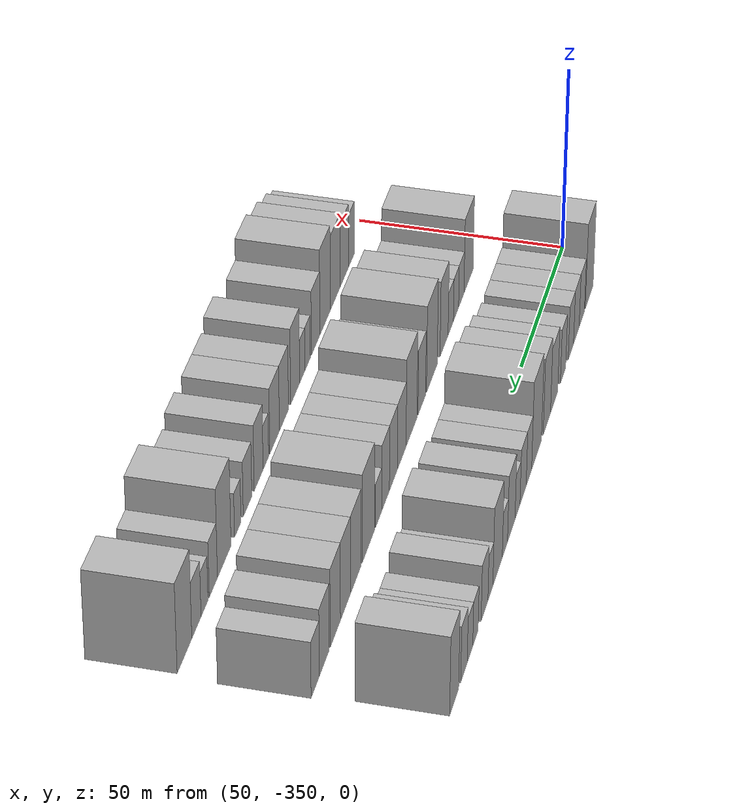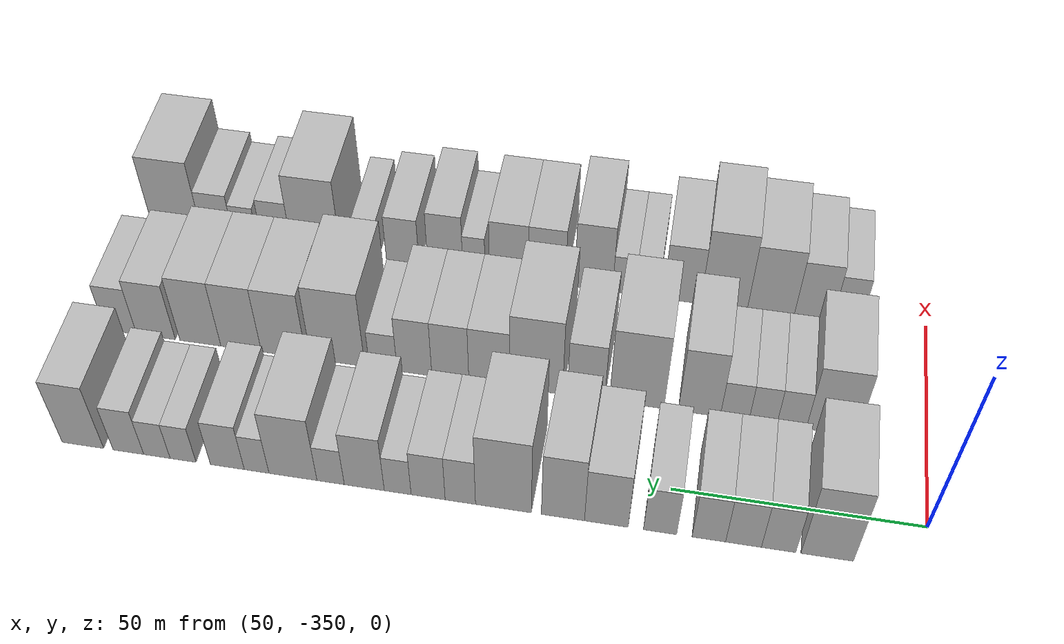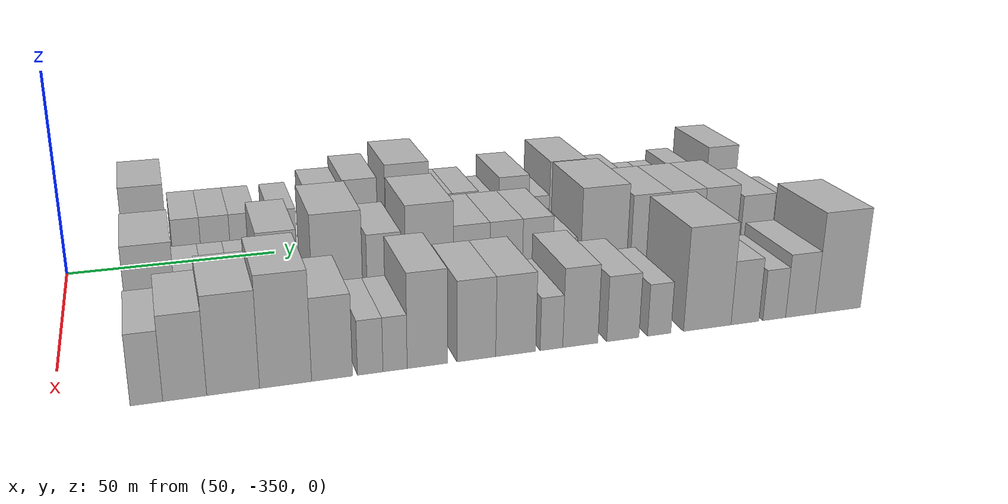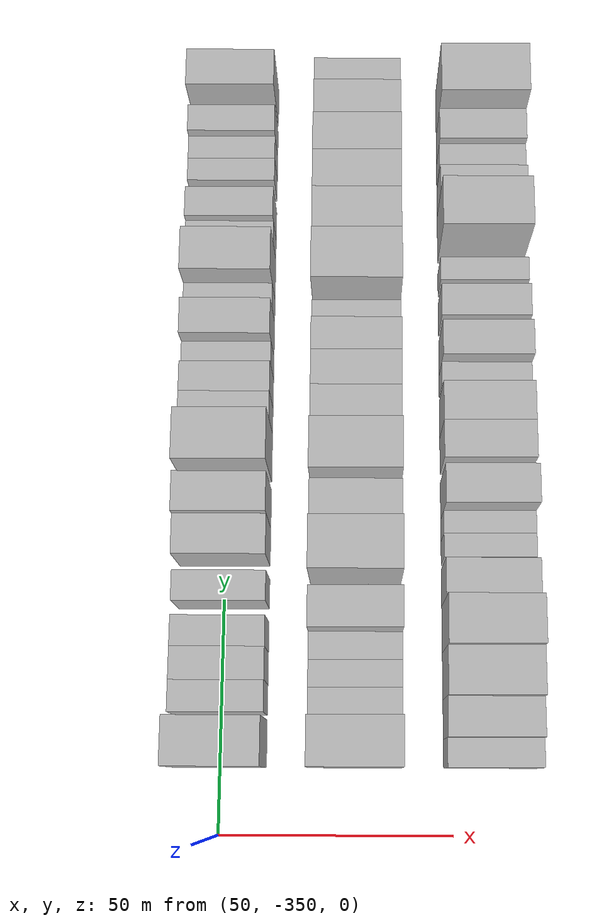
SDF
<sdf version="1.6">
 <world name="default">
  <model name="building_1">
   <static>1</static>
   <pose>50.0000 -330.9991 0 0.000000 0.000000 0.000000</pose>
   <link name="link">
    <pose>0 0 12.00 0 0 0</pose>
    <collision name="collision"><geometry><box><size>20.0000 10.0019 24.0000</size></box></geometry></collision>
    <visual name="visual">
     <cast_shadows>0</cast_shadows>
     <geometry><box><size>20.0000 10.0019 24.0000</size></box></geometry>
     <material>
      <script>
       <uri>model://HANNAS_wall/materials/scripts</uri>
       <uri>model://HANNAS_wall/materials/textures</uri>
       <name>vrc/HANNAS_wall</name>
      </script>
     </material>
    </visual>
   </link>
  </model>
  <model name="building_2">
   <static>1</static>
   <pose>50.0000 -321.7026 0 0.000000 0.000000 0.000000</pose>
   <link name="link">
    <pose>0 0 7.50 0 0 0</pose>
    <collision name="collision"><geometry><box><size>20.0000 6.5910 15.0000</size></box></geometry></collision>
    <visual name="visual">
     <cast_shadows>0</cast_shadows>
     <geometry><box><size>20.0000 6.5910 15.0000</size></box></geometry>
     <material>
      <script>
       <uri>model://HANNAS_wall/materials/scripts</uri>
       <uri>model://HANNAS_wall/materials/textures</uri>
       <name>vrc/HANNAS_wall</name>
      </script>
     </material>
    </visual>
   </link>
  </model>
  <model name="building_3">
   <static>1</static>
   <pose>50.0000 -314.9518 0 0.000000 0.000000 0.000000</pose>
   <link name="link">
    <pose>0 0 7.50 0 0 0</pose>
    <collision name="collision"><geometry><box><size>20.0000 6.9107 15.0000</size></box></geometry></collision>
    <visual name="visual">
     <cast_shadows>0</cast_shadows>
     <geometry><box><size>20.0000 6.9107 15.0000</size></box></geometry>
     <material>
      <script>
       <uri>model://HANNAS_wall/materials/scripts</uri>
       <uri>model://HANNAS_wall/materials/textures</uri>
       <name>vrc/HANNAS_wall</name>
      </script>
     </material>
    </visual>
   </link>
  </model>
  <model name="building_4">
   <static>1</static>
   <pose>50.0000 -308.2423 0 0.000000 0.000000 0.000000</pose>
   <link name="link">
    <pose>0 0 7.50 0 0 0</pose>
    <collision name="collision"><geometry><box><size>20.0000 6.5084 15.0000</size></box></geometry></collision>
    <visual name="visual">
     <cast_shadows>0</cast_shadows>
     <geometry><box><size>20.0000 6.5084 15.0000</size></box></geometry>
     <material>
      <script>
       <uri>model://HANNAS_wall/materials/scripts</uri>
       <uri>model://HANNAS_wall/materials/textures</uri>
       <name>vrc/HANNAS_wall</name>
      </script>
     </material>
    </visual>
   </link>
  </model>
  <model name="building_5">
   <static>1</static>
   <pose>50.0000 -298.7529 0 0.000000 0.000000 0.000000</pose>
   <link name="link">
    <pose>0 0 7.50 0 0 0</pose>
    <collision name="collision"><geometry><box><size>20.0000 6.4704 15.0000</size></box></geometry></collision>
    <visual name="visual">
     <cast_shadows>0</cast_shadows>
     <geometry><box><size>20.0000 6.4704 15.0000</size></box></geometry>
     <material>
      <script>
       <uri>model://HANNAS_wall/materials/scripts</uri>
       <uri>model://HANNAS_wall/materials/textures</uri>
       <name>vrc/HANNAS_wall</name>
      </script>
     </material>
    </visual>
   </link>
  </model>
  <model name="building_6">
   <static>1</static>
   <pose>50.0000 -288.2201 0 0.000000 0.000000 0.000000</pose>
   <link name="link">
    <pose>0 0 9.00 0 0 0</pose>
    <collision name="collision"><geometry><box><size>20.0000 8.5954 18.0000</size></box></geometry></collision>
    <visual name="visual">
     <cast_shadows>0</cast_shadows>
     <geometry><box><size>20.0000 8.5954 18.0000</size></box></geometry>
     <material>
      <script>
       <uri>model://HANNAS_wall/materials/scripts</uri>
       <uri>model://HANNAS_wall/materials/textures</uri>
       <name>vrc/HANNAS_wall</name>
      </script>
     </material>
    </visual>
   </link>
  </model>
  <model name="building_7">
   <static>1</static>
   <pose>50.0000 -279.6551 0 0.000000 0.000000 0.000000</pose>
   <link name="link">
    <pose>0 0 10.50 0 0 0</pose>
    <collision name="collision"><geometry><box><size>20.0000 8.5346 21.0000</size></box></geometry></collision>
    <visual name="visual">
     <cast_shadows>0</cast_shadows>
     <geometry><box><size>20.0000 8.5346 21.0000</size></box></geometry>
     <material>
      <script>
       <uri>model://HANNAS_wall/materials/scripts</uri>
       <uri>model://HANNAS_wall/materials/textures</uri>
       <name>vrc/HANNAS_wall</name>
      </script>
     </material>
    </visual>
   </link>
  </model>
  <model name="building_8">
   <static>1</static>
   <pose>50.0000 -267.8186 0 0.000000 0.000000 0.000000</pose>
   <link name="link">
    <pose>0 0 12.00 0 0 0</pose>
    <collision name="collision"><geometry><box><size>20.0000 11.1383 24.0000</size></box></geometry></collision>
    <visual name="visual">
     <cast_shadows>0</cast_shadows>
     <geometry><box><size>20.0000 11.1383 24.0000</size></box></geometry>
     <material>
      <script>
       <uri>model://HANNAS_wall/materials/scripts</uri>
       <uri>model://HANNAS_wall/materials/textures</uri>
       <name>vrc/HANNAS_wall</name>
      </script>
     </material>
    </visual>
   </link>
  </model>
  <model name="building_9">
   <static>1</static>
   <pose>50.0000 -259.2012 0 0.000000 0.000000 0.000000</pose>
   <link name="link">
    <pose>0 0 7.50 0 0 0</pose>
    <collision name="collision"><geometry><box><size>20.0000 6.0966 15.0000</size></box></geometry></collision>
    <visual name="visual">
     <cast_shadows>0</cast_shadows>
     <geometry><box><size>20.0000 6.0966 15.0000</size></box></geometry>
     <material>
      <script>
       <uri>model://HANNAS_wall/materials/scripts</uri>
       <uri>model://HANNAS_wall/materials/textures</uri>
       <name>vrc/HANNAS_wall</name>
      </script>
     </material>
    </visual>
   </link>
  </model>
  <model name="building_10">
   <static>1</static>
   <pose>50.0000 -252.7200 0 0.000000 0.000000 0.000000</pose>
   <link name="link">
    <pose>0 0 7.50 0 0 0</pose>
    <collision name="collision"><geometry><box><size>20.0000 6.8658 15.0000</size></box></geometry></collision>
    <visual name="visual">
     <cast_shadows>0</cast_shadows>
     <geometry><box><size>20.0000 6.8658 15.0000</size></box></geometry>
     <material>
      <script>
       <uri>model://HANNAS_wall/materials/scripts</uri>
       <uri>model://HANNAS_wall/materials/textures</uri>
       <name>vrc/HANNAS_wall</name>
      </script>
     </material>
    </visual>
   </link>
  </model>
  <model name="building_11">
   <static>1</static>
   <pose>50.0000 -246.5598 0 0.000000 0.000000 0.000000</pose>
   <link name="link">
    <pose>0 0 6.00 0 0 0</pose>
    <collision name="collision"><geometry><box><size>20.0000 5.4546 12.0000</size></box></geometry></collision>
    <visual name="visual">
     <cast_shadows>0</cast_shadows>
     <geometry><box><size>20.0000 5.4546 12.0000</size></box></geometry>
     <material>
      <script>
       <uri>model://HANNAS_wall/materials/scripts</uri>
       <uri>model://HANNAS_wall/materials/textures</uri>
       <name>vrc/HANNAS_wall</name>
      </script>
     </material>
    </visual>
   </link>
  </model>
  <model name="building_12">
   <static>1</static>
   <pose>50.0000 -239.7574 0 0.000000 0.000000 0.000000</pose>
   <link name="link">
    <pose>0 0 9.00 0 0 0</pose>
    <collision name="collision"><geometry><box><size>20.0000 8.1502 18.0000</size></box></geometry></collision>
    <visual name="visual">
     <cast_shadows>0</cast_shadows>
     <geometry><box><size>20.0000 8.1502 18.0000</size></box></geometry>
     <material>
      <script>
       <uri>model://HANNAS_wall/materials/scripts</uri>
       <uri>model://HANNAS_wall/materials/textures</uri>
       <name>vrc/HANNAS_wall</name>
      </script>
     </material>
    </visual>
   </link>
  </model>
  <model name="building_13">
   <static>1</static>
   <pose>50.0000 -232.8843 0 0.000000 0.000000 0.000000</pose>
   <link name="link">
    <pose>0 0 6.00 0 0 0</pose>
    <collision name="collision"><geometry><box><size>20.0000 5.5961 12.0000</size></box></geometry></collision>
    <visual name="visual">
     <cast_shadows>0</cast_shadows>
     <geometry><box><size>20.0000 5.5961 12.0000</size></box></geometry>
     <material>
      <script>
       <uri>model://HANNAS_wall/materials/scripts</uri>
       <uri>model://HANNAS_wall/materials/textures</uri>
       <name>vrc/HANNAS_wall</name>
      </script>
     </material>
    </visual>
   </link>
  </model>
  <model name="building_14">
   <static>1</static>
   <pose>50.0000 -225.1341 0 0.000000 0.000000 0.000000</pose>
   <link name="link">
    <pose>0 0 10.50 0 0 0</pose>
    <collision name="collision"><geometry><box><size>20.0000 9.9042 21.0000</size></box></geometry></collision>
    <visual name="visual">
     <cast_shadows>0</cast_shadows>
     <geometry><box><size>20.0000 9.9042 21.0000</size></box></geometry>
     <material>
      <script>
       <uri>model://HANNAS_wall/materials/scripts</uri>
       <uri>model://HANNAS_wall/materials/textures</uri>
       <name>vrc/HANNAS_wall</name>
      </script>
     </material>
    </visual>
   </link>
  </model>
  <model name="building_15">
   <static>1</static>
   <pose>50.0000 -217.6259 0 0.000000 0.000000 0.000000</pose>
   <link name="link">
    <pose>0 0 6.00 0 0 0</pose>
    <collision name="collision"><geometry><box><size>20.0000 5.1122 12.0000</size></box></geometry></collision>
    <visual name="visual">
     <cast_shadows>0</cast_shadows>
     <geometry><box><size>20.0000 5.1122 12.0000</size></box></geometry>
     <material>
      <script>
       <uri>model://HANNAS_wall/materials/scripts</uri>
       <uri>model://HANNAS_wall/materials/textures</uri>
       <name>vrc/HANNAS_wall</name>
      </script>
     </material>
    </visual>
   </link>
  </model>
  <model name="building_16">
   <static>1</static>
   <pose>50.0000 -211.5449 0 0.000000 0.000000 0.000000</pose>
   <link name="link">
    <pose>0 0 7.50 0 0 0</pose>
    <collision name="collision"><geometry><box><size>20.0000 7.0499 15.0000</size></box></geometry></collision>
    <visual name="visual">
     <cast_shadows>0</cast_shadows>
     <geometry><box><size>20.0000 7.0499 15.0000</size></box></geometry>
     <material>
      <script>
       <uri>model://HANNAS_wall/materials/scripts</uri>
       <uri>model://HANNAS_wall/materials/textures</uri>
       <name>vrc/HANNAS_wall</name>
      </script>
     </material>
    </visual>
   </link>
  </model>
  <model name="building_17">
   <static>1</static>
   <pose>50.0000 -202.3055 0 0.000000 0.000000 0.000000</pose>
   <link name="link">
    <pose>0 0 6.00 0 0 0</pose>
    <collision name="collision"><geometry><box><size>20.0000 5.4289 12.0000</size></box></geometry></collision>
    <visual name="visual">
     <cast_shadows>0</cast_shadows>
     <geometry><box><size>20.0000 5.4289 12.0000</size></box></geometry>
     <material>
      <script>
       <uri>model://HANNAS_wall/materials/scripts</uri>
       <uri>model://HANNAS_wall/materials/textures</uri>
       <name>vrc/HANNAS_wall</name>
      </script>
     </material>
    </visual>
   </link>
  </model>
  <model name="building_18">
   <static>1</static>
   <pose>50.0000 -196.8165 0 0.000000 0.000000 0.000000</pose>
   <link name="link">
    <pose>0 0 6.00 0 0 0</pose>
    <collision name="collision"><geometry><box><size>20.0000 5.5491 12.0000</size></box></geometry></collision>
    <visual name="visual">
     <cast_shadows>0</cast_shadows>
     <geometry><box><size>20.0000 5.5491 12.0000</size></box></geometry>
     <material>
      <script>
       <uri>model://HANNAS_wall/materials/scripts</uri>
       <uri>model://HANNAS_wall/materials/textures</uri>
       <name>vrc/HANNAS_wall</name>
      </script>
     </material>
    </visual>
   </link>
  </model>
  <model name="building_19">
   <static>1</static>
   <pose>50.0000 -190.8053 0 0.000000 0.000000 0.000000</pose>
   <link name="link">
    <pose>0 0 7.50 0 0 0</pose>
    <collision name="collision"><geometry><box><size>20.0000 6.4733 15.0000</size></box></geometry></collision>
    <visual name="visual">
     <cast_shadows>0</cast_shadows>
     <geometry><box><size>20.0000 6.4733 15.0000</size></box></geometry>
     <material>
      <script>
       <uri>model://HANNAS_wall/materials/scripts</uri>
       <uri>model://HANNAS_wall/materials/textures</uri>
       <name>vrc/HANNAS_wall</name>
      </script>
     </material>
    </visual>
   </link>
  </model>
  <model name="building_20">
   <static>1</static>
   <pose>50.0000 -181.1631 0 0.000000 0.000000 0.000000</pose>
   <link name="link">
    <pose>0 0 10.50 0 0 0</pose>
    <collision name="collision"><geometry><box><size>20.0000 8.8112 21.0000</size></box></geometry></collision>
    <visual name="visual">
     <cast_shadows>0</cast_shadows>
     <geometry><box><size>20.0000 8.8112 21.0000</size></box></geometry>
     <material>
      <script>
       <uri>model://HANNAS_wall/materials/scripts</uri>
       <uri>model://HANNAS_wall/materials/textures</uri>
       <name>vrc/HANNAS_wall</name>
      </script>
     </material>
    </visual>
   </link>
  </model>
  <model name="building_81">
   <static>1</static>
   <pose>79.0000 -330.8265 0 0.000000 0.000000 0.000000</pose>
   <link name="link">
    <pose>0 0 10.50 0 0 0</pose>
    <collision name="collision"><geometry><box><size>20.0000 10.3471 21.0000</size></box></geometry></collision>
    <visual name="visual">
     <cast_shadows>0</cast_shadows>
     <geometry><box><size>20.0000 10.3471 21.0000</size></box></geometry>
     <material>
      <script>
       <uri>model://HANNAS_wall/materials/scripts</uri>
       <uri>model://HANNAS_wall/materials/textures</uri>
       <name>vrc/HANNAS_wall</name>
      </script>
     </material>
    </visual>
   </link>
  </model>
  <model name="building_82">
   <static>1</static>
   <pose>79.0000 -322.6670 0 0.000000 0.000000 0.000000</pose>
   <link name="link">
    <pose>0 0 6.00 0 0 0</pose>
    <collision name="collision"><geometry><box><size>20.0000 5.9719 12.0000</size></box></geometry></collision>
    <visual name="visual">
     <cast_shadows>0</cast_shadows>
     <geometry><box><size>20.0000 5.9719 12.0000</size></box></geometry>
     <material>
      <script>
       <uri>model://HANNAS_wall/materials/scripts</uri>
       <uri>model://HANNAS_wall/materials/textures</uri>
       <name>vrc/HANNAS_wall</name>
      </script>
     </material>
    </visual>
   </link>
  </model>
  <model name="building_83">
   <static>1</static>
   <pose>79.0000 -316.8308 0 0.000000 0.000000 0.000000</pose>
   <link name="link">
    <pose>0 0 6.00 0 0 0</pose>
    <collision name="collision"><geometry><box><size>20.0000 5.7003 12.0000</size></box></geometry></collision>
    <visual name="visual">
     <cast_shadows>0</cast_shadows>
     <geometry><box><size>20.0000 5.7003 12.0000</size></box></geometry>
     <material>
      <script>
       <uri>model://HANNAS_wall/materials/scripts</uri>
       <uri>model://HANNAS_wall/materials/textures</uri>
       <name>vrc/HANNAS_wall</name>
      </script>
     </material>
    </visual>
   </link>
  </model>
  <model name="building_84">
   <static>1</static>
   <pose>79.0000 -311.0327 0 0.000000 0.000000 0.000000</pose>
   <link name="link">
    <pose>0 0 6.00 0 0 0</pose>
    <collision name="collision"><geometry><box><size>20.0000 5.8959 12.0000</size></box></geometry></collision>
    <visual name="visual">
     <cast_shadows>0</cast_shadows>
     <geometry><box><size>20.0000 5.8959 12.0000</size></box></geometry>
     <material>
      <script>
       <uri>model://HANNAS_wall/materials/scripts</uri>
       <uri>model://HANNAS_wall/materials/textures</uri>
       <name>vrc/HANNAS_wall</name>
      </script>
     </material>
    </visual>
   </link>
  </model>
  <model name="building_85">
   <static>1</static>
   <pose>79.0000 -303.7470 0 0.000000 0.000000 0.000000</pose>
   <link name="link">
    <pose>0 0 10.50 0 0 0</pose>
    <collision name="collision"><geometry><box><size>20.0000 8.6756 21.0000</size></box></geometry></collision>
    <visual name="visual">
     <cast_shadows>0</cast_shadows>
     <geometry><box><size>20.0000 8.6756 21.0000</size></box></geometry>
     <material>
      <script>
       <uri>model://HANNAS_wall/materials/scripts</uri>
       <uri>model://HANNAS_wall/materials/textures</uri>
       <name>vrc/HANNAS_wall</name>
      </script>
     </material>
    </visual>
   </link>
  </model>
  <model name="building_86">
   <static>1</static>
   <pose>79.0000 -290.7363 0 0.000000 0.000000 0.000000</pose>
   <link name="link">
    <pose>0 0 12.00 0 0 0</pose>
    <collision name="collision"><geometry><box><size>20.0000 11.3456 24.0000</size></box></geometry></collision>
    <visual name="visual">
     <cast_shadows>0</cast_shadows>
     <geometry><box><size>20.0000 11.3456 24.0000</size></box></geometry>
     <material>
      <script>
       <uri>model://HANNAS_wall/materials/scripts</uri>
       <uri>model://HANNAS_wall/materials/textures</uri>
       <name>vrc/HANNAS_wall</name>
      </script>
     </material>
    </visual>
   </link>
  </model>
  <model name="building_87">
   <static>1</static>
   <pose>79.0000 -280.1442 0 0.000000 0.000000 0.000000</pose>
   <link name="link">
    <pose>0 0 9.00 0 0 0</pose>
    <collision name="collision"><geometry><box><size>20.0000 7.8387 18.0000</size></box></geometry></collision>
    <visual name="visual">
     <cast_shadows>0</cast_shadows>
     <geometry><box><size>20.0000 7.8387 18.0000</size></box></geometry>
     <material>
      <script>
       <uri>model://HANNAS_wall/materials/scripts</uri>
       <uri>model://HANNAS_wall/materials/textures</uri>
       <name>vrc/HANNAS_wall</name>
      </script>
     </material>
    </visual>
   </link>
  </model>
  <model name="building_88">
   <static>1</static>
   <pose>79.0000 -269.6344 0 0.000000 0.000000 0.000000</pose>
   <link name="link">
    <pose>0 0 12.00 0 0 0</pose>
    <collision name="collision"><geometry><box><size>20.0000 11.1810 24.0000</size></box></geometry></collision>
    <visual name="visual">
     <cast_shadows>0</cast_shadows>
     <geometry><box><size>20.0000 11.1810 24.0000</size></box></geometry>
     <material>
      <script>
       <uri>model://HANNAS_wall/materials/scripts</uri>
       <uri>model://HANNAS_wall/materials/textures</uri>
       <name>vrc/HANNAS_wall</name>
      </script>
     </material>
    </visual>
   </link>
  </model>
  <model name="building_89">
   <static>1</static>
   <pose>79.0000 -259.7073 0 0.000000 0.000000 0.000000</pose>
   <link name="link">
    <pose>0 0 9.00 0 0 0</pose>
    <collision name="collision"><geometry><box><size>20.0000 8.6731 18.0000</size></box></geometry></collision>
    <visual name="visual">
     <cast_shadows>0</cast_shadows>
     <geometry><box><size>20.0000 8.6731 18.0000</size></box></geometry>
     <material>
      <script>
       <uri>model://HANNAS_wall/materials/scripts</uri>
       <uri>model://HANNAS_wall/materials/textures</uri>
       <name>vrc/HANNAS_wall</name>
      </script>
     </material>
    </visual>
   </link>
  </model>
  <model name="building_90">
   <static>1</static>
   <pose>79.0000 -251.4122 0 0.000000 0.000000 0.000000</pose>
   <link name="link">
    <pose>0 0 9.00 0 0 0</pose>
    <collision name="collision"><geometry><box><size>20.0000 7.9172 18.0000</size></box></geometry></collision>
    <visual name="visual">
     <cast_shadows>0</cast_shadows>
     <geometry><box><size>20.0000 7.9172 18.0000</size></box></geometry>
     <material>
      <script>
       <uri>model://HANNAS_wall/materials/scripts</uri>
       <uri>model://HANNAS_wall/materials/textures</uri>
       <name>vrc/HANNAS_wall</name>
      </script>
     </material>
    </visual>
   </link>
  </model>
  <model name="building_91">
   <static>1</static>
   <pose>79.0000 -243.7211 0 0.000000 0.000000 0.000000</pose>
   <link name="link">
    <pose>0 0 9.00 0 0 0</pose>
    <collision name="collision"><geometry><box><size>20.0000 7.4650 18.0000</size></box></geometry></collision>
    <visual name="visual">
     <cast_shadows>0</cast_shadows>
     <geometry><box><size>20.0000 7.4650 18.0000</size></box></geometry>
     <material>
      <script>
       <uri>model://HANNAS_wall/materials/scripts</uri>
       <uri>model://HANNAS_wall/materials/textures</uri>
       <name>vrc/HANNAS_wall</name>
      </script>
     </material>
    </visual>
   </link>
  </model>
  <model name="building_92">
   <static>1</static>
   <pose>79.0000 -236.9949 0 0.000000 0.000000 0.000000</pose>
   <link name="link">
    <pose>0 0 6.00 0 0 0</pose>
    <collision name="collision"><geometry><box><size>20.0000 5.9873 12.0000</size></box></geometry></collision>
    <visual name="visual">
     <cast_shadows>0</cast_shadows>
     <geometry><box><size>20.0000 5.9873 12.0000</size></box></geometry>
     <material>
      <script>
       <uri>model://HANNAS_wall/materials/scripts</uri>
       <uri>model://HANNAS_wall/materials/textures</uri>
       <name>vrc/HANNAS_wall</name>
      </script>
     </material>
    </visual>
   </link>
  </model>
  <model name="building_93">
   <static>1</static>
   <pose>79.0000 -227.1209 0 0.000000 0.000000 0.000000</pose>
   <link name="link">
    <pose>0 0 12.00 0 0 0</pose>
    <collision name="collision"><geometry><box><size>20.0000 11.7606 24.0000</size></box></geometry></collision>
    <visual name="visual">
     <cast_shadows>0</cast_shadows>
     <geometry><box><size>20.0000 11.7606 24.0000</size></box></geometry>
     <material>
      <script>
       <uri>model://HANNAS_wall/materials/scripts</uri>
       <uri>model://HANNAS_wall/materials/textures</uri>
       <name>vrc/HANNAS_wall</name>
      </script>
     </material>
    </visual>
   </link>
  </model>
  <model name="building_94">
   <static>1</static>
   <pose>79.0000 -215.3089 0 0.000000 0.000000 0.000000</pose>
   <link name="link">
    <pose>0 0 10.50 0 0 0</pose>
    <collision name="collision"><geometry><box><size>20.0000 9.8634 21.0000</size></box></geometry></collision>
    <visual name="visual">
     <cast_shadows>0</cast_shadows>
     <geometry><box><size>20.0000 9.8634 21.0000</size></box></geometry>
     <material>
      <script>
       <uri>model://HANNAS_wall/materials/scripts</uri>
       <uri>model://HANNAS_wall/materials/textures</uri>
       <name>vrc/HANNAS_wall</name>
      </script>
     </material>
    </visual>
   </link>
  </model>
  <model name="building_95">
   <static>1</static>
   <pose>79.0000 -205.8949 0 0.000000 0.000000 0.000000</pose>
   <link name="link">
    <pose>0 0 10.50 0 0 0</pose>
    <collision name="collision"><geometry><box><size>20.0000 8.9645 21.0000</size></box></geometry></collision>
    <visual name="visual">
     <cast_shadows>0</cast_shadows>
     <geometry><box><size>20.0000 8.9645 21.0000</size></box></geometry>
     <material>
      <script>
       <uri>model://HANNAS_wall/materials/scripts</uri>
       <uri>model://HANNAS_wall/materials/textures</uri>
       <name>vrc/HANNAS_wall</name>
      </script>
     </material>
    </visual>
   </link>
  </model>
  <model name="building_96">
   <static>1</static>
   <pose>79.0000 -196.8538 0 0.000000 0.000000 0.000000</pose>
   <link name="link">
    <pose>0 0 10.50 0 0 0</pose>
    <collision name="collision"><geometry><box><size>20.0000 9.1178 21.0000</size></box></geometry></collision>
    <visual name="visual">
     <cast_shadows>0</cast_shadows>
     <geometry><box><size>20.0000 9.1178 21.0000</size></box></geometry>
     <material>
      <script>
       <uri>model://HANNAS_wall/materials/scripts</uri>
       <uri>model://HANNAS_wall/materials/textures</uri>
       <name>vrc/HANNAS_wall</name>
      </script>
     </material>
    </visual>
   </link>
  </model>
  <model name="building_97">
   <static>1</static>
   <pose>79.0000 -186.9628 0 0.000000 0.000000 0.000000</pose>
   <link name="link">
    <pose>0 0 9.00 0 0 0</pose>
    <collision name="collision"><geometry><box><size>20.0000 8.6643 18.0000</size></box></geometry></collision>
    <visual name="visual">
     <cast_shadows>0</cast_shadows>
     <geometry><box><size>20.0000 8.6643 18.0000</size></box></geometry>
     <material>
      <script>
       <uri>model://HANNAS_wall/materials/scripts</uri>
       <uri>model://HANNAS_wall/materials/textures</uri>
       <name>vrc/HANNAS_wall</name>
      </script>
     </material>
    </visual>
   </link>
  </model>
  <model name="building_98">
   <static>1</static>
   <pose>79.0000 -179.0969 0 0.000000 0.000000 0.000000</pose>
   <link name="link">
    <pose>0 0 7.50 0 0 0</pose>
    <collision name="collision"><geometry><box><size>20.0000 7.0674 15.0000</size></box></geometry></collision>
    <visual name="visual">
     <cast_shadows>0</cast_shadows>
     <geometry><box><size>20.0000 7.0674 15.0000</size></box></geometry>
     <material>
      <script>
       <uri>model://HANNAS_wall/materials/scripts</uri>
       <uri>model://HANNAS_wall/materials/textures</uri>
       <name>vrc/HANNAS_wall</name>
      </script>
     </material>
    </visual>
   </link>
  </model>
  <model name="building_158">
   <static>1</static>
   <pose>108.0000 -332.9861 0 0.000000 0.000000 0.000000</pose>
   <link name="link">
    <pose>0 0 7.50 0 0 0</pose>
    <collision name="collision"><geometry><box><size>20.0000 6.0279 15.0000</size></box></geometry></collision>
    <visual name="visual">
     <cast_shadows>0</cast_shadows>
     <geometry><box><size>20.0000 6.0279 15.0000</size></box></geometry>
     <material>
      <script>
       <uri>model://HANNAS_wall/materials/scripts</uri>
       <uri>model://HANNAS_wall/materials/textures</uri>
       <name>vrc/HANNAS_wall</name>
      </script>
     </material>
    </visual>
   </link>
  </model>
  <model name="building_159">
   <static>1</static>
   <pose>108.0000 -325.8413 0 0.000000 0.000000 0.000000</pose>
   <link name="link">
    <pose>0 0 9.00 0 0 0</pose>
    <collision name="collision"><geometry><box><size>20.0000 8.2616 18.0000</size></box></geometry></collision>
    <visual name="visual">
     <cast_shadows>0</cast_shadows>
     <geometry><box><size>20.0000 8.2616 18.0000</size></box></geometry>
     <material>
      <script>
       <uri>model://HANNAS_wall/materials/scripts</uri>
       <uri>model://HANNAS_wall/materials/textures</uri>
       <name>vrc/HANNAS_wall</name>
      </script>
     </material>
    </visual>
   </link>
  </model>
  <model name="building_160">
   <static>1</static>
   <pose>108.0000 -316.6502 0 0.000000 0.000000 0.000000</pose>
   <link name="link">
    <pose>0 0 10.50 0 0 0</pose>
    <collision name="collision"><geometry><box><size>20.0000 10.1206 21.0000</size></box></geometry></collision>
    <visual name="visual">
     <cast_shadows>0</cast_shadows>
     <geometry><box><size>20.0000 10.1206 21.0000</size></box></geometry>
     <material>
      <script>
       <uri>model://HANNAS_wall/materials/scripts</uri>
       <uri>model://HANNAS_wall/materials/textures</uri>
       <name>vrc/HANNAS_wall</name>
      </script>
     </material>
    </visual>
   </link>
  </model>
  <model name="building_161">
   <static>1</static>
   <pose>108.0000 -306.4751 0 0.000000 0.000000 0.000000</pose>
   <link name="link">
    <pose>0 0 12.00 0 0 0</pose>
    <collision name="collision"><geometry><box><size>20.0000 10.2294 24.0000</size></box></geometry></collision>
    <visual name="visual">
     <cast_shadows>0</cast_shadows>
     <geometry><box><size>20.0000 10.2294 24.0000</size></box></geometry>
     <material>
      <script>
       <uri>model://HANNAS_wall/materials/scripts</uri>
       <uri>model://HANNAS_wall/materials/textures</uri>
       <name>vrc/HANNAS_wall</name>
      </script>
     </material>
    </visual>
   </link>
  </model>
  <model name="building_162">
   <static>1</static>
   <pose>108.0000 -297.2583 0 0.000000 0.000000 0.000000</pose>
   <link name="link">
    <pose>0 0 9.00 0 0 0</pose>
    <collision name="collision"><geometry><box><size>20.0000 8.2043 18.0000</size></box></geometry></collision>
    <visual name="visual">
     <cast_shadows>0</cast_shadows>
     <geometry><box><size>20.0000 8.2043 18.0000</size></box></geometry>
     <material>
      <script>
       <uri>model://HANNAS_wall/materials/scripts</uri>
       <uri>model://HANNAS_wall/materials/textures</uri>
       <name>vrc/HANNAS_wall</name>
      </script>
     </material>
    </visual>
   </link>
  </model>
  <model name="building_163">
   <static>1</static>
   <pose>108.0000 -289.5582 0 0.000000 0.000000 0.000000</pose>
   <link name="link">
    <pose>0 0 6.00 0 0 0</pose>
    <collision name="collision"><geometry><box><size>20.0000 5.1959 12.0000</size></box></geometry></collision>
    <visual name="visual">
     <cast_shadows>0</cast_shadows>
     <geometry><box><size>20.0000 5.1959 12.0000</size></box></geometry>
     <material>
      <script>
       <uri>model://HANNAS_wall/materials/scripts</uri>
       <uri>model://HANNAS_wall/materials/textures</uri>
       <name>vrc/HANNAS_wall</name>
      </script>
     </material>
    </visual>
   </link>
  </model>
  <model name="building_164">
   <static>1</static>
   <pose>108.0000 -284.4613 0 0.000000 0.000000 0.000000</pose>
   <link name="link">
    <pose>0 0 6.00 0 0 0</pose>
    <collision name="collision"><geometry><box><size>20.0000 4.9979 12.0000</size></box></geometry></collision>
    <visual name="visual">
     <cast_shadows>0</cast_shadows>
     <geometry><box><size>20.0000 4.9979 12.0000</size></box></geometry>
     <material>
      <script>
       <uri>model://HANNAS_wall/materials/scripts</uri>
       <uri>model://HANNAS_wall/materials/textures</uri>
       <name>vrc/HANNAS_wall</name>
      </script>
     </material>
    </visual>
   </link>
  </model>
  <model name="building_165">
   <static>1</static>
   <pose>108.0000 -277.7340 0 0.000000 0.000000 0.000000</pose>
   <link name="link">
    <pose>0 0 10.50 0 0 0</pose>
    <collision name="collision"><geometry><box><size>20.0000 8.4567 21.0000</size></box></geometry></collision>
    <visual name="visual">
     <cast_shadows>0</cast_shadows>
     <geometry><box><size>20.0000 8.4567 21.0000</size></box></geometry>
     <material>
      <script>
       <uri>model://HANNAS_wall/materials/scripts</uri>
       <uri>model://HANNAS_wall/materials/textures</uri>
       <name>vrc/HANNAS_wall</name>
      </script>
     </material>
    </visual>
   </link>
  </model>
  <model name="building_166">
   <static>1</static>
   <pose>108.0000 -267.3462 0 0.000000 0.000000 0.000000</pose>
   <link name="link">
    <pose>0 0 9.00 0 0 0</pose>
    <collision name="collision"><geometry><box><size>20.0000 8.3188 18.0000</size></box></geometry></collision>
    <visual name="visual">
     <cast_shadows>0</cast_shadows>
     <geometry><box><size>20.0000 8.3188 18.0000</size></box></geometry>
     <material>
      <script>
       <uri>model://HANNAS_wall/materials/scripts</uri>
       <uri>model://HANNAS_wall/materials/textures</uri>
       <name>vrc/HANNAS_wall</name>
      </script>
     </material>
    </visual>
   </link>
  </model>
  <model name="building_167">
   <static>1</static>
   <pose>108.0000 -258.8282 0 0.000000 0.000000 0.000000</pose>
   <link name="link">
    <pose>0 0 9.00 0 0 0</pose>
    <collision name="collision"><geometry><box><size>20.0000 8.7172 18.0000</size></box></geometry></collision>
    <visual name="visual">
     <cast_shadows>0</cast_shadows>
     <geometry><box><size>20.0000 8.7172 18.0000</size></box></geometry>
     <material>
      <script>
       <uri>model://HANNAS_wall/materials/scripts</uri>
       <uri>model://HANNAS_wall/materials/textures</uri>
       <name>vrc/HANNAS_wall</name>
      </script>
     </material>
    </visual>
   </link>
  </model>
  <model name="building_168">
   <static>1</static>
   <pose>108.0000 -250.9579 0 0.000000 0.000000 0.000000</pose>
   <link name="link">
    <pose>0 0 6.00 0 0 0</pose>
    <collision name="collision"><geometry><box><size>20.0000 5.0235 12.0000</size></box></geometry></collision>
    <visual name="visual">
     <cast_shadows>0</cast_shadows>
     <geometry><box><size>20.0000 5.0235 12.0000</size></box></geometry>
     <material>
      <script>
       <uri>model://HANNAS_wall/materials/scripts</uri>
       <uri>model://HANNAS_wall/materials/textures</uri>
       <name>vrc/HANNAS_wall</name>
      </script>
     </material>
    </visual>
   </link>
  </model>
  <model name="building_169">
   <static>1</static>
   <pose>108.0000 -244.4878 0 0.000000 0.000000 0.000000</pose>
   <link name="link">
    <pose>0 0 9.00 0 0 0</pose>
    <collision name="collision"><geometry><box><size>20.0000 7.9167 18.0000</size></box></geometry></collision>
    <visual name="visual">
     <cast_shadows>0</cast_shadows>
     <geometry><box><size>20.0000 7.9167 18.0000</size></box></geometry>
     <material>
      <script>
       <uri>model://HANNAS_wall/materials/scripts</uri>
       <uri>model://HANNAS_wall/materials/textures</uri>
       <name>vrc/HANNAS_wall</name>
      </script>
     </material>
    </visual>
   </link>
  </model>
  <model name="building_170">
   <static>1</static>
   <pose>108.0000 -234.8111 0 0.000000 0.000000 0.000000</pose>
   <link name="link">
    <pose>0 0 7.50 0 0 0</pose>
    <collision name="collision"><geometry><box><size>20.0000 7.4367 15.0000</size></box></geometry></collision>
    <visual name="visual">
     <cast_shadows>0</cast_shadows>
     <geometry><box><size>20.0000 7.4367 15.0000</size></box></geometry>
     <material>
      <script>
       <uri>model://HANNAS_wall/materials/scripts</uri>
       <uri>model://HANNAS_wall/materials/textures</uri>
       <name>vrc/HANNAS_wall</name>
      </script>
     </material>
    </visual>
   </link>
  </model>
  <model name="building_171">
   <static>1</static>
   <pose>108.0000 -226.3566 0 0.000000 0.000000 0.000000</pose>
   <link name="link">
    <pose>0 0 6.00 0 0 0</pose>
    <collision name="collision"><geometry><box><size>20.0000 5.4724 12.0000</size></box></geometry></collision>
    <visual name="visual">
     <cast_shadows>0</cast_shadows>
     <geometry><box><size>20.0000 5.4724 12.0000</size></box></geometry>
     <material>
      <script>
       <uri>model://HANNAS_wall/materials/scripts</uri>
       <uri>model://HANNAS_wall/materials/textures</uri>
       <name>vrc/HANNAS_wall</name>
      </script>
     </material>
    </visual>
   </link>
  </model>
  <model name="building_172">
   <static>1</static>
   <pose>108.0000 -214.9222 0 0.000000 0.000000 0.000000</pose>
   <link name="link">
    <pose>0 0 12.00 0 0 0</pose>
    <collision name="collision"><geometry><box><size>20.0000 11.3965 24.0000</size></box></geometry></collision>
    <visual name="visual">
     <cast_shadows>0</cast_shadows>
     <geometry><box><size>20.0000 11.3965 24.0000</size></box></geometry>
     <material>
      <script>
       <uri>model://HANNAS_wall/materials/scripts</uri>
       <uri>model://HANNAS_wall/materials/textures</uri>
       <name>vrc/HANNAS_wall</name>
      </script>
     </material>
    </visual>
   </link>
  </model>
  <model name="building_173">
   <static>1</static>
   <pose>108.0000 -205.8211 0 0.000000 0.000000 0.000000</pose>
   <link name="link">
    <pose>0 0 7.50 0 0 0</pose>
    <collision name="collision"><geometry><box><size>20.0000 6.8057 15.0000</size></box></geometry></collision>
    <visual name="visual">
     <cast_shadows>0</cast_shadows>
     <geometry><box><size>20.0000 6.8057 15.0000</size></box></geometry>
     <material>
      <script>
       <uri>model://HANNAS_wall/materials/scripts</uri>
       <uri>model://HANNAS_wall/materials/textures</uri>
       <name>vrc/HANNAS_wall</name>
      </script>
     </material>
    </visual>
   </link>
  </model>
  <model name="building_174">
   <static>1</static>
   <pose>108.0000 -198.6013 0 0.000000 0.000000 0.000000</pose>
   <link name="link">
    <pose>0 0 6.00 0 0 0</pose>
    <collision name="collision"><geometry><box><size>20.0000 5.6338 12.0000</size></box></geometry></collision>
    <visual name="visual">
     <cast_shadows>0</cast_shadows>
     <geometry><box><size>20.0000 5.6338 12.0000</size></box></geometry>
     <material>
      <script>
       <uri>model://HANNAS_wall/materials/scripts</uri>
       <uri>model://HANNAS_wall/materials/textures</uri>
       <name>vrc/HANNAS_wall</name>
      </script>
     </material>
    </visual>
   </link>
  </model>
  <model name="building_175">
   <static>1</static>
   <pose>108.0000 -192.0638 0 0.000000 0.000000 0.000000</pose>
   <link name="link">
    <pose>0 0 7.50 0 0 0</pose>
    <collision name="collision"><geometry><box><size>20.0000 7.4411 15.0000</size></box></geometry></collision>
    <visual name="visual">
     <cast_shadows>0</cast_shadows>
     <geometry><box><size>20.0000 7.4411 15.0000</size></box></geometry>
     <material>
      <script>
       <uri>model://HANNAS_wall/materials/scripts</uri>
       <uri>model://HANNAS_wall/materials/textures</uri>
       <name>vrc/HANNAS_wall</name>
      </script>
     </material>
    </visual>
   </link>
  </model>
  <model name="building_176">
   <static>1</static>
   <pose>108.0000 -182.5554 0 0.000000 0.000000 0.000000</pose>
   <link name="link">
    <pose>0 0 12.00 0 0 0</pose>
    <collision name="collision"><geometry><box><size>20.0000 11.5759 24.0000</size></box></geometry></collision>
    <visual name="visual">
     <cast_shadows>0</cast_shadows>
     <geometry><box><size>20.0000 11.5759 24.0000</size></box></geometry>
     <material>
      <script>
       <uri>model://HANNAS_wall/materials/scripts</uri>
       <uri>model://HANNAS_wall/materials/textures</uri>
       <name>vrc/HANNAS_wall</name>
      </script>
     </material>
    </visual>
   </link>
  </model>
 </world>
</sdf>
